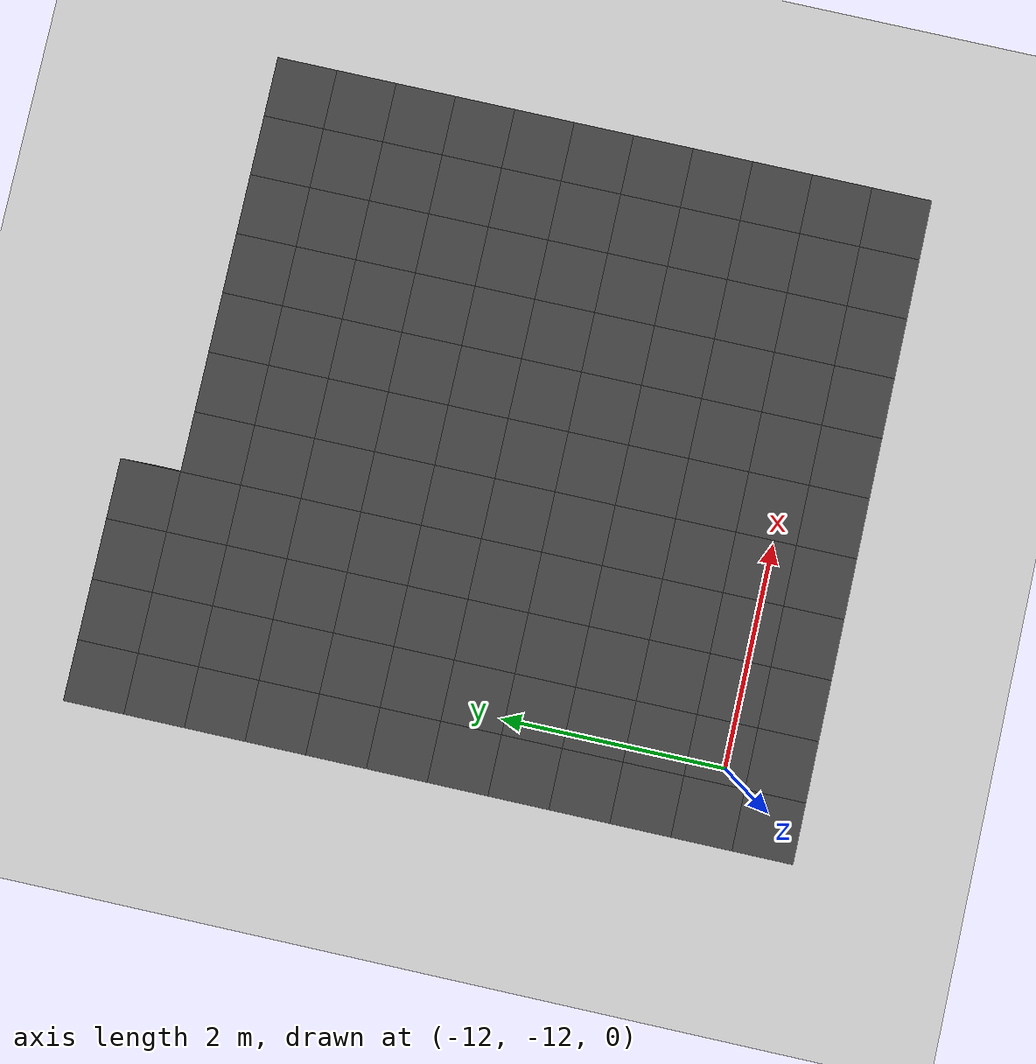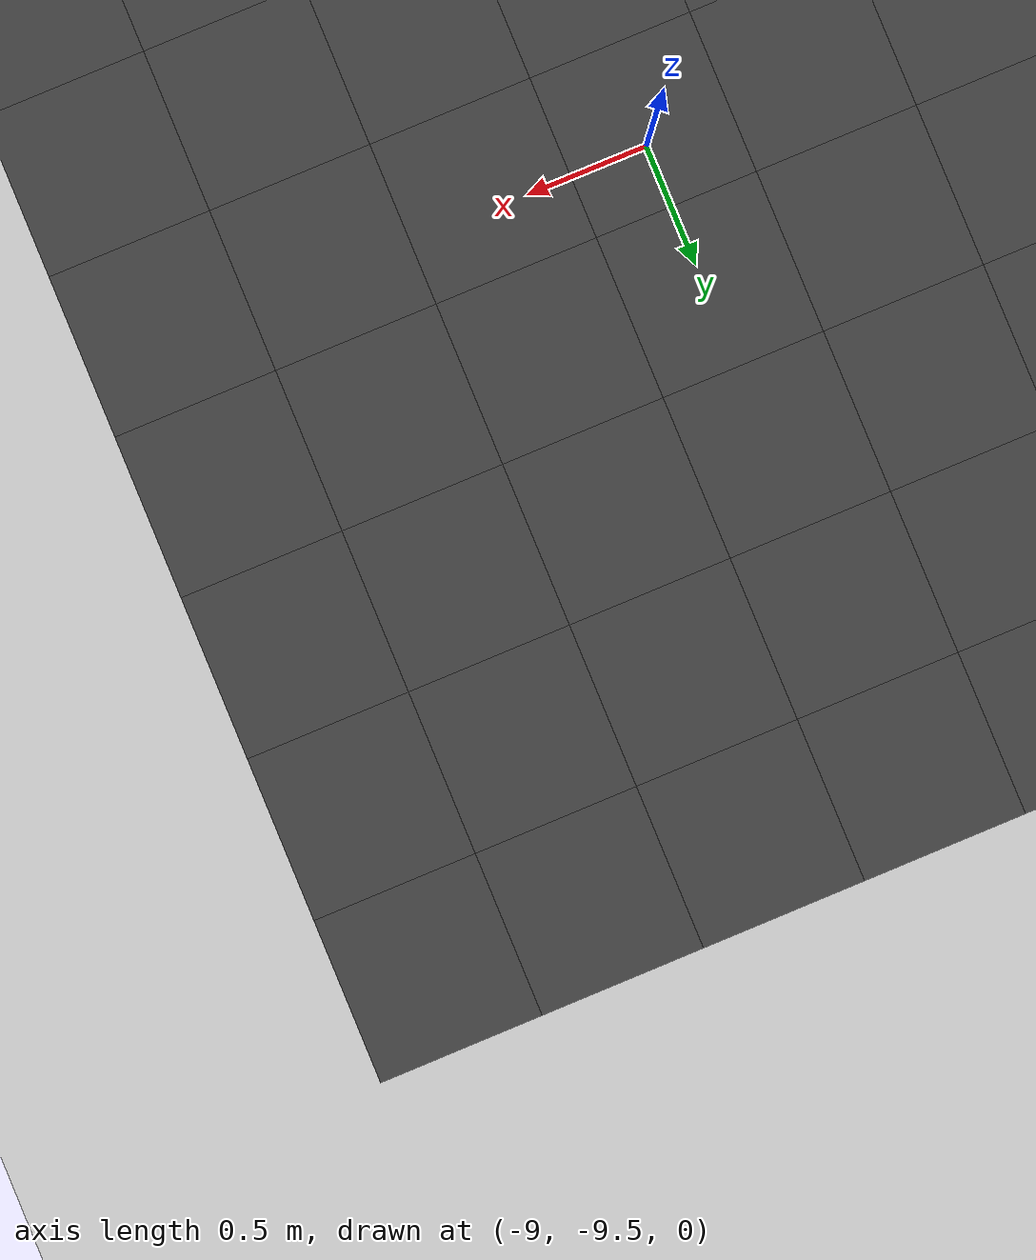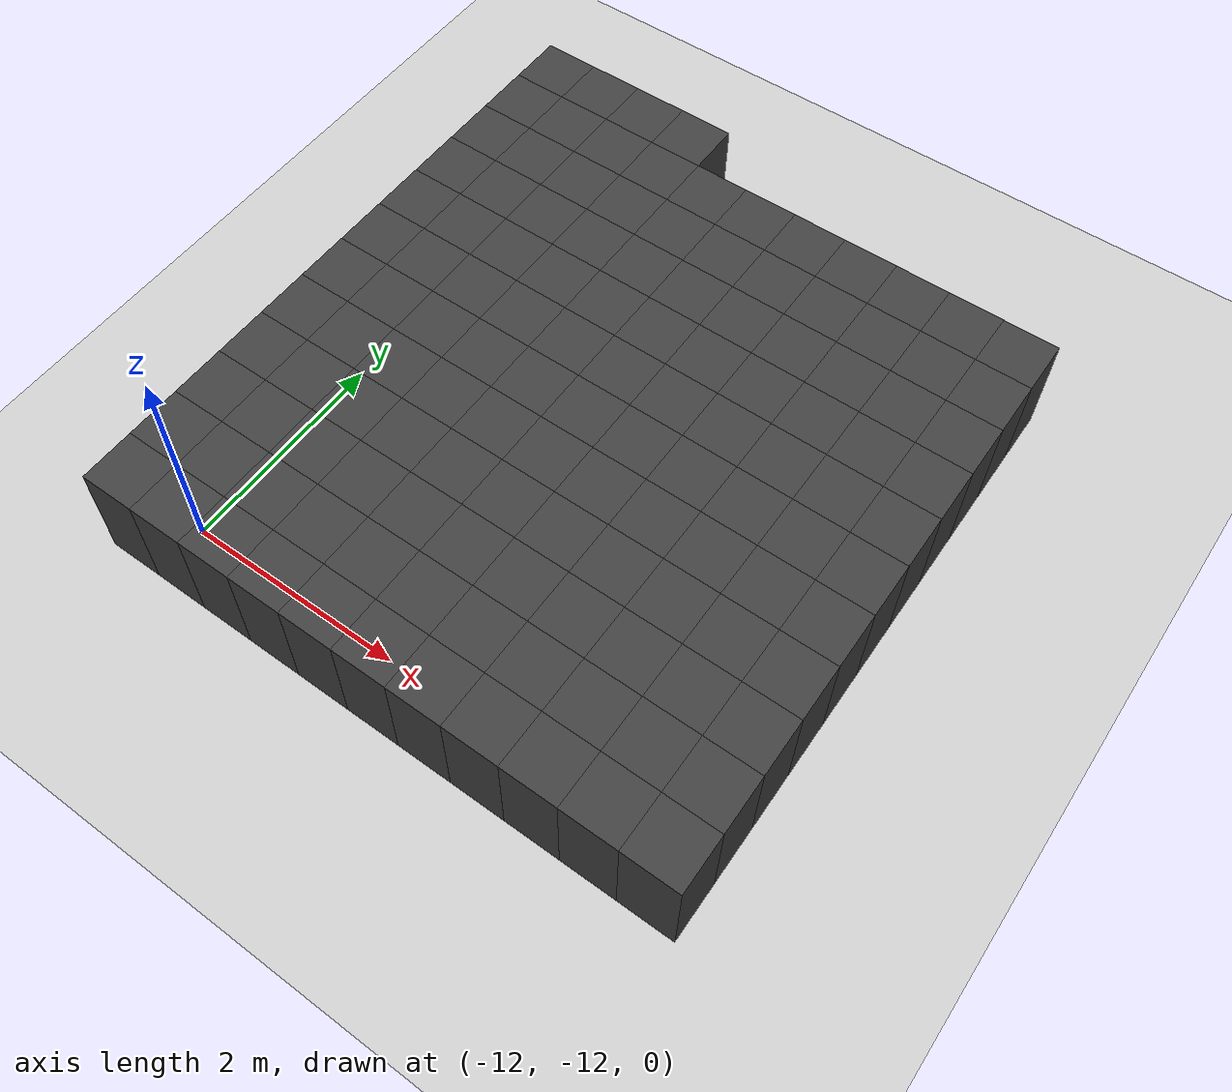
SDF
<sdf version="1.7">
 <world name="map_10764">
  <model name="ground_plane">
   <static>true</static>
   <link name="link">
    <collision name="collision">
     <geometry><plane><normal>0 0 1</normal><size>200 200</size></plane></geometry>
    </collision>
    <visual name="visual">
     <geometry><plane><normal>0 0 1</normal><size>200 200</size></plane></geometry>
     <material><ambient>0.8 0.8 0.8 1</ambient><diffuse>0.8 0.8 0.8 1</diffuse></material>
    </visual>
   </link>
  </model>
  <model name="maze_environment">
   <static>true</static>
   <link name="wall_1555">
    <pose>-12.250 -6.750 0.500 0 0 0</pose>
    <collision name="col"><geometry><box><size>0.5 0.5 1.0</size></box></geometry></collision>
    <visual name="vis">
     <geometry><box><size>0.5 0.5 1.0</size></box></geometry>
     <material><ambient>0.15 0.15 0.15 1</ambient><diffuse>0.25 0.25 0.25 1</diffuse></material>
    </visual>
   </link>
   <link name="wall_1556">
    <pose>-11.750 -6.750 0.500 0 0 0</pose>
    <collision name="col"><geometry><box><size>0.5 0.5 1.0</size></box></geometry></collision>
    <visual name="vis">
     <geometry><box><size>0.5 0.5 1.0</size></box></geometry>
     <material><ambient>0.15 0.15 0.15 1</ambient><diffuse>0.25 0.25 0.25 1</diffuse></material>
    </visual>
   </link>
   <link name="wall_1557">
    <pose>-11.250 -6.750 0.500 0 0 0</pose>
    <collision name="col"><geometry><box><size>0.5 0.5 1.0</size></box></geometry></collision>
    <visual name="vis">
     <geometry><box><size>0.5 0.5 1.0</size></box></geometry>
     <material><ambient>0.15 0.15 0.15 1</ambient><diffuse>0.25 0.25 0.25 1</diffuse></material>
    </visual>
   </link>
   <link name="wall_1558">
    <pose>-10.750 -6.750 0.500 0 0 0</pose>
    <collision name="col"><geometry><box><size>0.5 0.5 1.0</size></box></geometry></collision>
    <visual name="vis">
     <geometry><box><size>0.5 0.5 1.0</size></box></geometry>
     <material><ambient>0.15 0.15 0.15 1</ambient><diffuse>0.25 0.25 0.25 1</diffuse></material>
    </visual>
   </link>
   <link name="wall_1599">
    <pose>-12.250 -7.250 0.500 0 0 0</pose>
    <collision name="col"><geometry><box><size>0.5 0.5 1.0</size></box></geometry></collision>
    <visual name="vis">
     <geometry><box><size>0.5 0.5 1.0</size></box></geometry>
     <material><ambient>0.15 0.15 0.15 1</ambient><diffuse>0.25 0.25 0.25 1</diffuse></material>
    </visual>
   </link>
   <link name="wall_1600">
    <pose>-11.750 -7.250 0.500 0 0 0</pose>
    <collision name="col"><geometry><box><size>0.5 0.5 1.0</size></box></geometry></collision>
    <visual name="vis">
     <geometry><box><size>0.5 0.5 1.0</size></box></geometry>
     <material><ambient>0.15 0.15 0.15 1</ambient><diffuse>0.25 0.25 0.25 1</diffuse></material>
    </visual>
   </link>
   <link name="wall_1601">
    <pose>-11.250 -7.250 0.500 0 0 0</pose>
    <collision name="col"><geometry><box><size>0.5 0.5 1.0</size></box></geometry></collision>
    <visual name="vis">
     <geometry><box><size>0.5 0.5 1.0</size></box></geometry>
     <material><ambient>0.15 0.15 0.15 1</ambient><diffuse>0.25 0.25 0.25 1</diffuse></material>
    </visual>
   </link>
   <link name="wall_1602">
    <pose>-10.750 -7.250 0.500 0 0 0</pose>
    <collision name="col"><geometry><box><size>0.5 0.5 1.0</size></box></geometry></collision>
    <visual name="vis">
     <geometry><box><size>0.5 0.5 1.0</size></box></geometry>
     <material><ambient>0.15 0.15 0.15 1</ambient><diffuse>0.25 0.25 0.25 1</diffuse></material>
    </visual>
   </link>
   <link name="wall_1603">
    <pose>-10.250 -7.250 0.500 0 0 0</pose>
    <collision name="col"><geometry><box><size>0.5 0.5 1.0</size></box></geometry></collision>
    <visual name="vis">
     <geometry><box><size>0.5 0.5 1.0</size></box></geometry>
     <material><ambient>0.15 0.15 0.15 1</ambient><diffuse>0.25 0.25 0.25 1</diffuse></material>
    </visual>
   </link>
   <link name="wall_1604">
    <pose>-9.750 -7.250 0.500 0 0 0</pose>
    <collision name="col"><geometry><box><size>0.5 0.5 1.0</size></box></geometry></collision>
    <visual name="vis">
     <geometry><box><size>0.5 0.5 1.0</size></box></geometry>
     <material><ambient>0.15 0.15 0.15 1</ambient><diffuse>0.25 0.25 0.25 1</diffuse></material>
    </visual>
   </link>
   <link name="wall_1605">
    <pose>-9.250 -7.250 0.500 0 0 0</pose>
    <collision name="col"><geometry><box><size>0.5 0.5 1.0</size></box></geometry></collision>
    <visual name="vis">
     <geometry><box><size>0.5 0.5 1.0</size></box></geometry>
     <material><ambient>0.15 0.15 0.15 1</ambient><diffuse>0.25 0.25 0.25 1</diffuse></material>
    </visual>
   </link>
   <link name="wall_1606">
    <pose>-8.750 -7.250 0.500 0 0 0</pose>
    <collision name="col"><geometry><box><size>0.5 0.5 1.0</size></box></geometry></collision>
    <visual name="vis">
     <geometry><box><size>0.5 0.5 1.0</size></box></geometry>
     <material><ambient>0.15 0.15 0.15 1</ambient><diffuse>0.25 0.25 0.25 1</diffuse></material>
    </visual>
   </link>
   <link name="wall_1607">
    <pose>-8.250 -7.250 0.500 0 0 0</pose>
    <collision name="col"><geometry><box><size>0.5 0.5 1.0</size></box></geometry></collision>
    <visual name="vis">
     <geometry><box><size>0.5 0.5 1.0</size></box></geometry>
     <material><ambient>0.15 0.15 0.15 1</ambient><diffuse>0.25 0.25 0.25 1</diffuse></material>
    </visual>
   </link>
   <link name="wall_1608">
    <pose>-7.750 -7.250 0.500 0 0 0</pose>
    <collision name="col"><geometry><box><size>0.5 0.5 1.0</size></box></geometry></collision>
    <visual name="vis">
     <geometry><box><size>0.5 0.5 1.0</size></box></geometry>
     <material><ambient>0.15 0.15 0.15 1</ambient><diffuse>0.25 0.25 0.25 1</diffuse></material>
    </visual>
   </link>
   <link name="wall_1609">
    <pose>-7.250 -7.250 0.500 0 0 0</pose>
    <collision name="col"><geometry><box><size>0.5 0.5 1.0</size></box></geometry></collision>
    <visual name="vis">
     <geometry><box><size>0.5 0.5 1.0</size></box></geometry>
     <material><ambient>0.15 0.15 0.15 1</ambient><diffuse>0.25 0.25 0.25 1</diffuse></material>
    </visual>
   </link>
   <link name="wall_1648">
    <pose>-12.250 -7.750 0.500 0 0 0</pose>
    <collision name="col"><geometry><box><size>0.5 0.5 1.0</size></box></geometry></collision>
    <visual name="vis">
     <geometry><box><size>0.5 0.5 1.0</size></box></geometry>
     <material><ambient>0.15 0.15 0.15 1</ambient><diffuse>0.25 0.25 0.25 1</diffuse></material>
    </visual>
   </link>
   <link name="wall_1649">
    <pose>-11.750 -7.750 0.500 0 0 0</pose>
    <collision name="col"><geometry><box><size>0.5 0.5 1.0</size></box></geometry></collision>
    <visual name="vis">
     <geometry><box><size>0.5 0.5 1.0</size></box></geometry>
     <material><ambient>0.15 0.15 0.15 1</ambient><diffuse>0.25 0.25 0.25 1</diffuse></material>
    </visual>
   </link>
   <link name="wall_1650">
    <pose>-11.250 -7.750 0.500 0 0 0</pose>
    <collision name="col"><geometry><box><size>0.5 0.5 1.0</size></box></geometry></collision>
    <visual name="vis">
     <geometry><box><size>0.5 0.5 1.0</size></box></geometry>
     <material><ambient>0.15 0.15 0.15 1</ambient><diffuse>0.25 0.25 0.25 1</diffuse></material>
    </visual>
   </link>
   <link name="wall_1651">
    <pose>-10.750 -7.750 0.500 0 0 0</pose>
    <collision name="col"><geometry><box><size>0.5 0.5 1.0</size></box></geometry></collision>
    <visual name="vis">
     <geometry><box><size>0.5 0.5 1.0</size></box></geometry>
     <material><ambient>0.15 0.15 0.15 1</ambient><diffuse>0.25 0.25 0.25 1</diffuse></material>
    </visual>
   </link>
   <link name="wall_1652">
    <pose>-10.250 -7.750 0.500 0 0 0</pose>
    <collision name="col"><geometry><box><size>0.5 0.5 1.0</size></box></geometry></collision>
    <visual name="vis">
     <geometry><box><size>0.5 0.5 1.0</size></box></geometry>
     <material><ambient>0.15 0.15 0.15 1</ambient><diffuse>0.25 0.25 0.25 1</diffuse></material>
    </visual>
   </link>
   <link name="wall_1653">
    <pose>-9.750 -7.750 0.500 0 0 0</pose>
    <collision name="col"><geometry><box><size>0.5 0.5 1.0</size></box></geometry></collision>
    <visual name="vis">
     <geometry><box><size>0.5 0.5 1.0</size></box></geometry>
     <material><ambient>0.15 0.15 0.15 1</ambient><diffuse>0.25 0.25 0.25 1</diffuse></material>
    </visual>
   </link>
   <link name="wall_1654">
    <pose>-9.250 -7.750 0.500 0 0 0</pose>
    <collision name="col"><geometry><box><size>0.5 0.5 1.0</size></box></geometry></collision>
    <visual name="vis">
     <geometry><box><size>0.5 0.5 1.0</size></box></geometry>
     <material><ambient>0.15 0.15 0.15 1</ambient><diffuse>0.25 0.25 0.25 1</diffuse></material>
    </visual>
   </link>
   <link name="wall_1655">
    <pose>-8.750 -7.750 0.500 0 0 0</pose>
    <collision name="col"><geometry><box><size>0.5 0.5 1.0</size></box></geometry></collision>
    <visual name="vis">
     <geometry><box><size>0.5 0.5 1.0</size></box></geometry>
     <material><ambient>0.15 0.15 0.15 1</ambient><diffuse>0.25 0.25 0.25 1</diffuse></material>
    </visual>
   </link>
   <link name="wall_1656">
    <pose>-8.250 -7.750 0.500 0 0 0</pose>
    <collision name="col"><geometry><box><size>0.5 0.5 1.0</size></box></geometry></collision>
    <visual name="vis">
     <geometry><box><size>0.5 0.5 1.0</size></box></geometry>
     <material><ambient>0.15 0.15 0.15 1</ambient><diffuse>0.25 0.25 0.25 1</diffuse></material>
    </visual>
   </link>
   <link name="wall_1657">
    <pose>-7.750 -7.750 0.500 0 0 0</pose>
    <collision name="col"><geometry><box><size>0.5 0.5 1.0</size></box></geometry></collision>
    <visual name="vis">
     <geometry><box><size>0.5 0.5 1.0</size></box></geometry>
     <material><ambient>0.15 0.15 0.15 1</ambient><diffuse>0.25 0.25 0.25 1</diffuse></material>
    </visual>
   </link>
   <link name="wall_1658">
    <pose>-7.250 -7.750 0.500 0 0 0</pose>
    <collision name="col"><geometry><box><size>0.5 0.5 1.0</size></box></geometry></collision>
    <visual name="vis">
     <geometry><box><size>0.5 0.5 1.0</size></box></geometry>
     <material><ambient>0.15 0.15 0.15 1</ambient><diffuse>0.25 0.25 0.25 1</diffuse></material>
    </visual>
   </link>
   <link name="wall_1697">
    <pose>-12.250 -8.250 0.500 0 0 0</pose>
    <collision name="col"><geometry><box><size>0.5 0.5 1.0</size></box></geometry></collision>
    <visual name="vis">
     <geometry><box><size>0.5 0.5 1.0</size></box></geometry>
     <material><ambient>0.15 0.15 0.15 1</ambient><diffuse>0.25 0.25 0.25 1</diffuse></material>
    </visual>
   </link>
   <link name="wall_1698">
    <pose>-11.750 -8.250 0.500 0 0 0</pose>
    <collision name="col"><geometry><box><size>0.5 0.5 1.0</size></box></geometry></collision>
    <visual name="vis">
     <geometry><box><size>0.5 0.5 1.0</size></box></geometry>
     <material><ambient>0.15 0.15 0.15 1</ambient><diffuse>0.25 0.25 0.25 1</diffuse></material>
    </visual>
   </link>
   <link name="wall_1699">
    <pose>-11.250 -8.250 0.500 0 0 0</pose>
    <collision name="col"><geometry><box><size>0.5 0.5 1.0</size></box></geometry></collision>
    <visual name="vis">
     <geometry><box><size>0.5 0.5 1.0</size></box></geometry>
     <material><ambient>0.15 0.15 0.15 1</ambient><diffuse>0.25 0.25 0.25 1</diffuse></material>
    </visual>
   </link>
   <link name="wall_1700">
    <pose>-10.750 -8.250 0.500 0 0 0</pose>
    <collision name="col"><geometry><box><size>0.5 0.5 1.0</size></box></geometry></collision>
    <visual name="vis">
     <geometry><box><size>0.5 0.5 1.0</size></box></geometry>
     <material><ambient>0.15 0.15 0.15 1</ambient><diffuse>0.25 0.25 0.25 1</diffuse></material>
    </visual>
   </link>
   <link name="wall_1701">
    <pose>-10.250 -8.250 0.500 0 0 0</pose>
    <collision name="col"><geometry><box><size>0.5 0.5 1.0</size></box></geometry></collision>
    <visual name="vis">
     <geometry><box><size>0.5 0.5 1.0</size></box></geometry>
     <material><ambient>0.15 0.15 0.15 1</ambient><diffuse>0.25 0.25 0.25 1</diffuse></material>
    </visual>
   </link>
   <link name="wall_1702">
    <pose>-9.750 -8.250 0.500 0 0 0</pose>
    <collision name="col"><geometry><box><size>0.5 0.5 1.0</size></box></geometry></collision>
    <visual name="vis">
     <geometry><box><size>0.5 0.5 1.0</size></box></geometry>
     <material><ambient>0.15 0.15 0.15 1</ambient><diffuse>0.25 0.25 0.25 1</diffuse></material>
    </visual>
   </link>
   <link name="wall_1703">
    <pose>-9.250 -8.250 0.500 0 0 0</pose>
    <collision name="col"><geometry><box><size>0.5 0.5 1.0</size></box></geometry></collision>
    <visual name="vis">
     <geometry><box><size>0.5 0.5 1.0</size></box></geometry>
     <material><ambient>0.15 0.15 0.15 1</ambient><diffuse>0.25 0.25 0.25 1</diffuse></material>
    </visual>
   </link>
   <link name="wall_1704">
    <pose>-8.750 -8.250 0.500 0 0 0</pose>
    <collision name="col"><geometry><box><size>0.5 0.5 1.0</size></box></geometry></collision>
    <visual name="vis">
     <geometry><box><size>0.5 0.5 1.0</size></box></geometry>
     <material><ambient>0.15 0.15 0.15 1</ambient><diffuse>0.25 0.25 0.25 1</diffuse></material>
    </visual>
   </link>
   <link name="wall_1705">
    <pose>-8.250 -8.250 0.500 0 0 0</pose>
    <collision name="col"><geometry><box><size>0.5 0.5 1.0</size></box></geometry></collision>
    <visual name="vis">
     <geometry><box><size>0.5 0.5 1.0</size></box></geometry>
     <material><ambient>0.15 0.15 0.15 1</ambient><diffuse>0.25 0.25 0.25 1</diffuse></material>
    </visual>
   </link>
   <link name="wall_1706">
    <pose>-7.750 -8.250 0.500 0 0 0</pose>
    <collision name="col"><geometry><box><size>0.5 0.5 1.0</size></box></geometry></collision>
    <visual name="vis">
     <geometry><box><size>0.5 0.5 1.0</size></box></geometry>
     <material><ambient>0.15 0.15 0.15 1</ambient><diffuse>0.25 0.25 0.25 1</diffuse></material>
    </visual>
   </link>
   <link name="wall_1707">
    <pose>-7.250 -8.250 0.500 0 0 0</pose>
    <collision name="col"><geometry><box><size>0.5 0.5 1.0</size></box></geometry></collision>
    <visual name="vis">
     <geometry><box><size>0.5 0.5 1.0</size></box></geometry>
     <material><ambient>0.15 0.15 0.15 1</ambient><diffuse>0.25 0.25 0.25 1</diffuse></material>
    </visual>
   </link>
   <link name="wall_1746">
    <pose>-12.250 -8.750 0.500 0 0 0</pose>
    <collision name="col"><geometry><box><size>0.5 0.5 1.0</size></box></geometry></collision>
    <visual name="vis">
     <geometry><box><size>0.5 0.5 1.0</size></box></geometry>
     <material><ambient>0.15 0.15 0.15 1</ambient><diffuse>0.25 0.25 0.25 1</diffuse></material>
    </visual>
   </link>
   <link name="wall_1747">
    <pose>-11.750 -8.750 0.500 0 0 0</pose>
    <collision name="col"><geometry><box><size>0.5 0.5 1.0</size></box></geometry></collision>
    <visual name="vis">
     <geometry><box><size>0.5 0.5 1.0</size></box></geometry>
     <material><ambient>0.15 0.15 0.15 1</ambient><diffuse>0.25 0.25 0.25 1</diffuse></material>
    </visual>
   </link>
   <link name="wall_1748">
    <pose>-11.250 -8.750 0.500 0 0 0</pose>
    <collision name="col"><geometry><box><size>0.5 0.5 1.0</size></box></geometry></collision>
    <visual name="vis">
     <geometry><box><size>0.5 0.5 1.0</size></box></geometry>
     <material><ambient>0.15 0.15 0.15 1</ambient><diffuse>0.25 0.25 0.25 1</diffuse></material>
    </visual>
   </link>
   <link name="wall_1749">
    <pose>-10.750 -8.750 0.500 0 0 0</pose>
    <collision name="col"><geometry><box><size>0.5 0.5 1.0</size></box></geometry></collision>
    <visual name="vis">
     <geometry><box><size>0.5 0.5 1.0</size></box></geometry>
     <material><ambient>0.15 0.15 0.15 1</ambient><diffuse>0.25 0.25 0.25 1</diffuse></material>
    </visual>
   </link>
   <link name="wall_1750">
    <pose>-10.250 -8.750 0.500 0 0 0</pose>
    <collision name="col"><geometry><box><size>0.5 0.5 1.0</size></box></geometry></collision>
    <visual name="vis">
     <geometry><box><size>0.5 0.5 1.0</size></box></geometry>
     <material><ambient>0.15 0.15 0.15 1</ambient><diffuse>0.25 0.25 0.25 1</diffuse></material>
    </visual>
   </link>
   <link name="wall_1751">
    <pose>-9.750 -8.750 0.500 0 0 0</pose>
    <collision name="col"><geometry><box><size>0.5 0.5 1.0</size></box></geometry></collision>
    <visual name="vis">
     <geometry><box><size>0.5 0.5 1.0</size></box></geometry>
     <material><ambient>0.15 0.15 0.15 1</ambient><diffuse>0.25 0.25 0.25 1</diffuse></material>
    </visual>
   </link>
   <link name="wall_1752">
    <pose>-9.250 -8.750 0.500 0 0 0</pose>
    <collision name="col"><geometry><box><size>0.5 0.5 1.0</size></box></geometry></collision>
    <visual name="vis">
     <geometry><box><size>0.5 0.5 1.0</size></box></geometry>
     <material><ambient>0.15 0.15 0.15 1</ambient><diffuse>0.25 0.25 0.25 1</diffuse></material>
    </visual>
   </link>
   <link name="wall_1753">
    <pose>-8.750 -8.750 0.500 0 0 0</pose>
    <collision name="col"><geometry><box><size>0.5 0.5 1.0</size></box></geometry></collision>
    <visual name="vis">
     <geometry><box><size>0.5 0.5 1.0</size></box></geometry>
     <material><ambient>0.15 0.15 0.15 1</ambient><diffuse>0.25 0.25 0.25 1</diffuse></material>
    </visual>
   </link>
   <link name="wall_1754">
    <pose>-8.250 -8.750 0.500 0 0 0</pose>
    <collision name="col"><geometry><box><size>0.5 0.5 1.0</size></box></geometry></collision>
    <visual name="vis">
     <geometry><box><size>0.5 0.5 1.0</size></box></geometry>
     <material><ambient>0.15 0.15 0.15 1</ambient><diffuse>0.25 0.25 0.25 1</diffuse></material>
    </visual>
   </link>
   <link name="wall_1755">
    <pose>-7.750 -8.750 0.500 0 0 0</pose>
    <collision name="col"><geometry><box><size>0.5 0.5 1.0</size></box></geometry></collision>
    <visual name="vis">
     <geometry><box><size>0.5 0.5 1.0</size></box></geometry>
     <material><ambient>0.15 0.15 0.15 1</ambient><diffuse>0.25 0.25 0.25 1</diffuse></material>
    </visual>
   </link>
   <link name="wall_1756">
    <pose>-7.250 -8.750 0.500 0 0 0</pose>
    <collision name="col"><geometry><box><size>0.5 0.5 1.0</size></box></geometry></collision>
    <visual name="vis">
     <geometry><box><size>0.5 0.5 1.0</size></box></geometry>
     <material><ambient>0.15 0.15 0.15 1</ambient><diffuse>0.25 0.25 0.25 1</diffuse></material>
    </visual>
   </link>
   <link name="wall_1795">
    <pose>-12.250 -9.250 0.500 0 0 0</pose>
    <collision name="col"><geometry><box><size>0.5 0.5 1.0</size></box></geometry></collision>
    <visual name="vis">
     <geometry><box><size>0.5 0.5 1.0</size></box></geometry>
     <material><ambient>0.15 0.15 0.15 1</ambient><diffuse>0.25 0.25 0.25 1</diffuse></material>
    </visual>
   </link>
   <link name="wall_1796">
    <pose>-11.750 -9.250 0.500 0 0 0</pose>
    <collision name="col"><geometry><box><size>0.5 0.5 1.0</size></box></geometry></collision>
    <visual name="vis">
     <geometry><box><size>0.5 0.5 1.0</size></box></geometry>
     <material><ambient>0.15 0.15 0.15 1</ambient><diffuse>0.25 0.25 0.25 1</diffuse></material>
    </visual>
   </link>
   <link name="wall_1797">
    <pose>-11.250 -9.250 0.500 0 0 0</pose>
    <collision name="col"><geometry><box><size>0.5 0.5 1.0</size></box></geometry></collision>
    <visual name="vis">
     <geometry><box><size>0.5 0.5 1.0</size></box></geometry>
     <material><ambient>0.15 0.15 0.15 1</ambient><diffuse>0.25 0.25 0.25 1</diffuse></material>
    </visual>
   </link>
   <link name="wall_1798">
    <pose>-10.750 -9.250 0.500 0 0 0</pose>
    <collision name="col"><geometry><box><size>0.5 0.5 1.0</size></box></geometry></collision>
    <visual name="vis">
     <geometry><box><size>0.5 0.5 1.0</size></box></geometry>
     <material><ambient>0.15 0.15 0.15 1</ambient><diffuse>0.25 0.25 0.25 1</diffuse></material>
    </visual>
   </link>
   <link name="wall_1799">
    <pose>-10.250 -9.250 0.500 0 0 0</pose>
    <collision name="col"><geometry><box><size>0.5 0.5 1.0</size></box></geometry></collision>
    <visual name="vis">
     <geometry><box><size>0.5 0.5 1.0</size></box></geometry>
     <material><ambient>0.15 0.15 0.15 1</ambient><diffuse>0.25 0.25 0.25 1</diffuse></material>
    </visual>
   </link>
   <link name="wall_1800">
    <pose>-9.750 -9.250 0.500 0 0 0</pose>
    <collision name="col"><geometry><box><size>0.5 0.5 1.0</size></box></geometry></collision>
    <visual name="vis">
     <geometry><box><size>0.5 0.5 1.0</size></box></geometry>
     <material><ambient>0.15 0.15 0.15 1</ambient><diffuse>0.25 0.25 0.25 1</diffuse></material>
    </visual>
   </link>
   <link name="wall_1801">
    <pose>-9.250 -9.250 0.500 0 0 0</pose>
    <collision name="col"><geometry><box><size>0.5 0.5 1.0</size></box></geometry></collision>
    <visual name="vis">
     <geometry><box><size>0.5 0.5 1.0</size></box></geometry>
     <material><ambient>0.15 0.15 0.15 1</ambient><diffuse>0.25 0.25 0.25 1</diffuse></material>
    </visual>
   </link>
   <link name="wall_1802">
    <pose>-8.750 -9.250 0.500 0 0 0</pose>
    <collision name="col"><geometry><box><size>0.5 0.5 1.0</size></box></geometry></collision>
    <visual name="vis">
     <geometry><box><size>0.5 0.5 1.0</size></box></geometry>
     <material><ambient>0.15 0.15 0.15 1</ambient><diffuse>0.25 0.25 0.25 1</diffuse></material>
    </visual>
   </link>
   <link name="wall_1803">
    <pose>-8.250 -9.250 0.500 0 0 0</pose>
    <collision name="col"><geometry><box><size>0.5 0.5 1.0</size></box></geometry></collision>
    <visual name="vis">
     <geometry><box><size>0.5 0.5 1.0</size></box></geometry>
     <material><ambient>0.15 0.15 0.15 1</ambient><diffuse>0.25 0.25 0.25 1</diffuse></material>
    </visual>
   </link>
   <link name="wall_1804">
    <pose>-7.750 -9.250 0.500 0 0 0</pose>
    <collision name="col"><geometry><box><size>0.5 0.5 1.0</size></box></geometry></collision>
    <visual name="vis">
     <geometry><box><size>0.5 0.5 1.0</size></box></geometry>
     <material><ambient>0.15 0.15 0.15 1</ambient><diffuse>0.25 0.25 0.25 1</diffuse></material>
    </visual>
   </link>
   <link name="wall_1805">
    <pose>-7.250 -9.250 0.500 0 0 0</pose>
    <collision name="col"><geometry><box><size>0.5 0.5 1.0</size></box></geometry></collision>
    <visual name="vis">
     <geometry><box><size>0.5 0.5 1.0</size></box></geometry>
     <material><ambient>0.15 0.15 0.15 1</ambient><diffuse>0.25 0.25 0.25 1</diffuse></material>
    </visual>
   </link>
   <link name="wall_1844">
    <pose>-12.250 -9.750 0.500 0 0 0</pose>
    <collision name="col"><geometry><box><size>0.5 0.5 1.0</size></box></geometry></collision>
    <visual name="vis">
     <geometry><box><size>0.5 0.5 1.0</size></box></geometry>
     <material><ambient>0.15 0.15 0.15 1</ambient><diffuse>0.25 0.25 0.25 1</diffuse></material>
    </visual>
   </link>
   <link name="wall_1845">
    <pose>-11.750 -9.750 0.500 0 0 0</pose>
    <collision name="col"><geometry><box><size>0.5 0.5 1.0</size></box></geometry></collision>
    <visual name="vis">
     <geometry><box><size>0.5 0.5 1.0</size></box></geometry>
     <material><ambient>0.15 0.15 0.15 1</ambient><diffuse>0.25 0.25 0.25 1</diffuse></material>
    </visual>
   </link>
   <link name="wall_1846">
    <pose>-11.250 -9.750 0.500 0 0 0</pose>
    <collision name="col"><geometry><box><size>0.5 0.5 1.0</size></box></geometry></collision>
    <visual name="vis">
     <geometry><box><size>0.5 0.5 1.0</size></box></geometry>
     <material><ambient>0.15 0.15 0.15 1</ambient><diffuse>0.25 0.25 0.25 1</diffuse></material>
    </visual>
   </link>
   <link name="wall_1847">
    <pose>-10.750 -9.750 0.500 0 0 0</pose>
    <collision name="col"><geometry><box><size>0.5 0.5 1.0</size></box></geometry></collision>
    <visual name="vis">
     <geometry><box><size>0.5 0.5 1.0</size></box></geometry>
     <material><ambient>0.15 0.15 0.15 1</ambient><diffuse>0.25 0.25 0.25 1</diffuse></material>
    </visual>
   </link>
   <link name="wall_1848">
    <pose>-10.250 -9.750 0.500 0 0 0</pose>
    <collision name="col"><geometry><box><size>0.5 0.5 1.0</size></box></geometry></collision>
    <visual name="vis">
     <geometry><box><size>0.5 0.5 1.0</size></box></geometry>
     <material><ambient>0.15 0.15 0.15 1</ambient><diffuse>0.25 0.25 0.25 1</diffuse></material>
    </visual>
   </link>
   <link name="wall_1849">
    <pose>-9.750 -9.750 0.500 0 0 0</pose>
    <collision name="col"><geometry><box><size>0.5 0.5 1.0</size></box></geometry></collision>
    <visual name="vis">
     <geometry><box><size>0.5 0.5 1.0</size></box></geometry>
     <material><ambient>0.15 0.15 0.15 1</ambient><diffuse>0.25 0.25 0.25 1</diffuse></material>
    </visual>
   </link>
   <link name="wall_1850">
    <pose>-9.250 -9.750 0.500 0 0 0</pose>
    <collision name="col"><geometry><box><size>0.5 0.5 1.0</size></box></geometry></collision>
    <visual name="vis">
     <geometry><box><size>0.5 0.5 1.0</size></box></geometry>
     <material><ambient>0.15 0.15 0.15 1</ambient><diffuse>0.25 0.25 0.25 1</diffuse></material>
    </visual>
   </link>
   <link name="wall_1851">
    <pose>-8.750 -9.750 0.500 0 0 0</pose>
    <collision name="col"><geometry><box><size>0.5 0.5 1.0</size></box></geometry></collision>
    <visual name="vis">
     <geometry><box><size>0.5 0.5 1.0</size></box></geometry>
     <material><ambient>0.15 0.15 0.15 1</ambient><diffuse>0.25 0.25 0.25 1</diffuse></material>
    </visual>
   </link>
   <link name="wall_1852">
    <pose>-8.250 -9.750 0.500 0 0 0</pose>
    <collision name="col"><geometry><box><size>0.5 0.5 1.0</size></box></geometry></collision>
    <visual name="vis">
     <geometry><box><size>0.5 0.5 1.0</size></box></geometry>
     <material><ambient>0.15 0.15 0.15 1</ambient><diffuse>0.25 0.25 0.25 1</diffuse></material>
    </visual>
   </link>
   <link name="wall_1853">
    <pose>-7.750 -9.750 0.500 0 0 0</pose>
    <collision name="col"><geometry><box><size>0.5 0.5 1.0</size></box></geometry></collision>
    <visual name="vis">
     <geometry><box><size>0.5 0.5 1.0</size></box></geometry>
     <material><ambient>0.15 0.15 0.15 1</ambient><diffuse>0.25 0.25 0.25 1</diffuse></material>
    </visual>
   </link>
   <link name="wall_1854">
    <pose>-7.250 -9.750 0.500 0 0 0</pose>
    <collision name="col"><geometry><box><size>0.5 0.5 1.0</size></box></geometry></collision>
    <visual name="vis">
     <geometry><box><size>0.5 0.5 1.0</size></box></geometry>
     <material><ambient>0.15 0.15 0.15 1</ambient><diffuse>0.25 0.25 0.25 1</diffuse></material>
    </visual>
   </link>
   <link name="wall_1893">
    <pose>-12.250 -10.250 0.500 0 0 0</pose>
    <collision name="col"><geometry><box><size>0.5 0.5 1.0</size></box></geometry></collision>
    <visual name="vis">
     <geometry><box><size>0.5 0.5 1.0</size></box></geometry>
     <material><ambient>0.15 0.15 0.15 1</ambient><diffuse>0.25 0.25 0.25 1</diffuse></material>
    </visual>
   </link>
   <link name="wall_1894">
    <pose>-11.750 -10.250 0.500 0 0 0</pose>
    <collision name="col"><geometry><box><size>0.5 0.5 1.0</size></box></geometry></collision>
    <visual name="vis">
     <geometry><box><size>0.5 0.5 1.0</size></box></geometry>
     <material><ambient>0.15 0.15 0.15 1</ambient><diffuse>0.25 0.25 0.25 1</diffuse></material>
    </visual>
   </link>
   <link name="wall_1895">
    <pose>-11.250 -10.250 0.500 0 0 0</pose>
    <collision name="col"><geometry><box><size>0.5 0.5 1.0</size></box></geometry></collision>
    <visual name="vis">
     <geometry><box><size>0.5 0.5 1.0</size></box></geometry>
     <material><ambient>0.15 0.15 0.15 1</ambient><diffuse>0.25 0.25 0.25 1</diffuse></material>
    </visual>
   </link>
   <link name="wall_1896">
    <pose>-10.750 -10.250 0.500 0 0 0</pose>
    <collision name="col"><geometry><box><size>0.5 0.5 1.0</size></box></geometry></collision>
    <visual name="vis">
     <geometry><box><size>0.5 0.5 1.0</size></box></geometry>
     <material><ambient>0.15 0.15 0.15 1</ambient><diffuse>0.25 0.25 0.25 1</diffuse></material>
    </visual>
   </link>
   <link name="wall_1897">
    <pose>-10.250 -10.250 0.500 0 0 0</pose>
    <collision name="col"><geometry><box><size>0.5 0.5 1.0</size></box></geometry></collision>
    <visual name="vis">
     <geometry><box><size>0.5 0.5 1.0</size></box></geometry>
     <material><ambient>0.15 0.15 0.15 1</ambient><diffuse>0.25 0.25 0.25 1</diffuse></material>
    </visual>
   </link>
   <link name="wall_1898">
    <pose>-9.750 -10.250 0.500 0 0 0</pose>
    <collision name="col"><geometry><box><size>0.5 0.5 1.0</size></box></geometry></collision>
    <visual name="vis">
     <geometry><box><size>0.5 0.5 1.0</size></box></geometry>
     <material><ambient>0.15 0.15 0.15 1</ambient><diffuse>0.25 0.25 0.25 1</diffuse></material>
    </visual>
   </link>
   <link name="wall_1899">
    <pose>-9.250 -10.250 0.500 0 0 0</pose>
    <collision name="col"><geometry><box><size>0.5 0.5 1.0</size></box></geometry></collision>
    <visual name="vis">
     <geometry><box><size>0.5 0.5 1.0</size></box></geometry>
     <material><ambient>0.15 0.15 0.15 1</ambient><diffuse>0.25 0.25 0.25 1</diffuse></material>
    </visual>
   </link>
   <link name="wall_1900">
    <pose>-8.750 -10.250 0.500 0 0 0</pose>
    <collision name="col"><geometry><box><size>0.5 0.5 1.0</size></box></geometry></collision>
    <visual name="vis">
     <geometry><box><size>0.5 0.5 1.0</size></box></geometry>
     <material><ambient>0.15 0.15 0.15 1</ambient><diffuse>0.25 0.25 0.25 1</diffuse></material>
    </visual>
   </link>
   <link name="wall_1901">
    <pose>-8.250 -10.250 0.500 0 0 0</pose>
    <collision name="col"><geometry><box><size>0.5 0.5 1.0</size></box></geometry></collision>
    <visual name="vis">
     <geometry><box><size>0.5 0.5 1.0</size></box></geometry>
     <material><ambient>0.15 0.15 0.15 1</ambient><diffuse>0.25 0.25 0.25 1</diffuse></material>
    </visual>
   </link>
   <link name="wall_1902">
    <pose>-7.750 -10.250 0.500 0 0 0</pose>
    <collision name="col"><geometry><box><size>0.5 0.5 1.0</size></box></geometry></collision>
    <visual name="vis">
     <geometry><box><size>0.5 0.5 1.0</size></box></geometry>
     <material><ambient>0.15 0.15 0.15 1</ambient><diffuse>0.25 0.25 0.25 1</diffuse></material>
    </visual>
   </link>
   <link name="wall_1903">
    <pose>-7.250 -10.250 0.500 0 0 0</pose>
    <collision name="col"><geometry><box><size>0.5 0.5 1.0</size></box></geometry></collision>
    <visual name="vis">
     <geometry><box><size>0.5 0.5 1.0</size></box></geometry>
     <material><ambient>0.15 0.15 0.15 1</ambient><diffuse>0.25 0.25 0.25 1</diffuse></material>
    </visual>
   </link>
   <link name="wall_1942">
    <pose>-12.250 -10.750 0.500 0 0 0</pose>
    <collision name="col"><geometry><box><size>0.5 0.5 1.0</size></box></geometry></collision>
    <visual name="vis">
     <geometry><box><size>0.5 0.5 1.0</size></box></geometry>
     <material><ambient>0.15 0.15 0.15 1</ambient><diffuse>0.25 0.25 0.25 1</diffuse></material>
    </visual>
   </link>
   <link name="wall_1943">
    <pose>-11.750 -10.750 0.500 0 0 0</pose>
    <collision name="col"><geometry><box><size>0.5 0.5 1.0</size></box></geometry></collision>
    <visual name="vis">
     <geometry><box><size>0.5 0.5 1.0</size></box></geometry>
     <material><ambient>0.15 0.15 0.15 1</ambient><diffuse>0.25 0.25 0.25 1</diffuse></material>
    </visual>
   </link>
   <link name="wall_1944">
    <pose>-11.250 -10.750 0.500 0 0 0</pose>
    <collision name="col"><geometry><box><size>0.5 0.5 1.0</size></box></geometry></collision>
    <visual name="vis">
     <geometry><box><size>0.5 0.5 1.0</size></box></geometry>
     <material><ambient>0.15 0.15 0.15 1</ambient><diffuse>0.25 0.25 0.25 1</diffuse></material>
    </visual>
   </link>
   <link name="wall_1945">
    <pose>-10.750 -10.750 0.500 0 0 0</pose>
    <collision name="col"><geometry><box><size>0.5 0.5 1.0</size></box></geometry></collision>
    <visual name="vis">
     <geometry><box><size>0.5 0.5 1.0</size></box></geometry>
     <material><ambient>0.15 0.15 0.15 1</ambient><diffuse>0.25 0.25 0.25 1</diffuse></material>
    </visual>
   </link>
   <link name="wall_1946">
    <pose>-10.250 -10.750 0.500 0 0 0</pose>
    <collision name="col"><geometry><box><size>0.5 0.5 1.0</size></box></geometry></collision>
    <visual name="vis">
     <geometry><box><size>0.5 0.5 1.0</size></box></geometry>
     <material><ambient>0.15 0.15 0.15 1</ambient><diffuse>0.25 0.25 0.25 1</diffuse></material>
    </visual>
   </link>
   <link name="wall_1947">
    <pose>-9.750 -10.750 0.500 0 0 0</pose>
    <collision name="col"><geometry><box><size>0.5 0.5 1.0</size></box></geometry></collision>
    <visual name="vis">
     <geometry><box><size>0.5 0.5 1.0</size></box></geometry>
     <material><ambient>0.15 0.15 0.15 1</ambient><diffuse>0.25 0.25 0.25 1</diffuse></material>
    </visual>
   </link>
   <link name="wall_1948">
    <pose>-9.250 -10.750 0.500 0 0 0</pose>
    <collision name="col"><geometry><box><size>0.5 0.5 1.0</size></box></geometry></collision>
    <visual name="vis">
     <geometry><box><size>0.5 0.5 1.0</size></box></geometry>
     <material><ambient>0.15 0.15 0.15 1</ambient><diffuse>0.25 0.25 0.25 1</diffuse></material>
    </visual>
   </link>
   <link name="wall_1949">
    <pose>-8.750 -10.750 0.500 0 0 0</pose>
    <collision name="col"><geometry><box><size>0.5 0.5 1.0</size></box></geometry></collision>
    <visual name="vis">
     <geometry><box><size>0.5 0.5 1.0</size></box></geometry>
     <material><ambient>0.15 0.15 0.15 1</ambient><diffuse>0.25 0.25 0.25 1</diffuse></material>
    </visual>
   </link>
   <link name="wall_1950">
    <pose>-8.250 -10.750 0.500 0 0 0</pose>
    <collision name="col"><geometry><box><size>0.5 0.5 1.0</size></box></geometry></collision>
    <visual name="vis">
     <geometry><box><size>0.5 0.5 1.0</size></box></geometry>
     <material><ambient>0.15 0.15 0.15 1</ambient><diffuse>0.25 0.25 0.25 1</diffuse></material>
    </visual>
   </link>
   <link name="wall_1951">
    <pose>-7.750 -10.750 0.500 0 0 0</pose>
    <collision name="col"><geometry><box><size>0.5 0.5 1.0</size></box></geometry></collision>
    <visual name="vis">
     <geometry><box><size>0.5 0.5 1.0</size></box></geometry>
     <material><ambient>0.15 0.15 0.15 1</ambient><diffuse>0.25 0.25 0.25 1</diffuse></material>
    </visual>
   </link>
   <link name="wall_1952">
    <pose>-7.250 -10.750 0.500 0 0 0</pose>
    <collision name="col"><geometry><box><size>0.5 0.5 1.0</size></box></geometry></collision>
    <visual name="vis">
     <geometry><box><size>0.5 0.5 1.0</size></box></geometry>
     <material><ambient>0.15 0.15 0.15 1</ambient><diffuse>0.25 0.25 0.25 1</diffuse></material>
    </visual>
   </link>
   <link name="wall_1988">
    <pose>-12.250 -11.250 0.500 0 0 0</pose>
    <collision name="col"><geometry><box><size>0.5 0.5 1.0</size></box></geometry></collision>
    <visual name="vis">
     <geometry><box><size>0.5 0.5 1.0</size></box></geometry>
     <material><ambient>0.15 0.15 0.15 1</ambient><diffuse>0.25 0.25 0.25 1</diffuse></material>
    </visual>
   </link>
   <link name="wall_1989">
    <pose>-11.750 -11.250 0.500 0 0 0</pose>
    <collision name="col"><geometry><box><size>0.5 0.5 1.0</size></box></geometry></collision>
    <visual name="vis">
     <geometry><box><size>0.5 0.5 1.0</size></box></geometry>
     <material><ambient>0.15 0.15 0.15 1</ambient><diffuse>0.25 0.25 0.25 1</diffuse></material>
    </visual>
   </link>
   <link name="wall_1990">
    <pose>-11.250 -11.250 0.500 0 0 0</pose>
    <collision name="col"><geometry><box><size>0.5 0.5 1.0</size></box></geometry></collision>
    <visual name="vis">
     <geometry><box><size>0.5 0.5 1.0</size></box></geometry>
     <material><ambient>0.15 0.15 0.15 1</ambient><diffuse>0.25 0.25 0.25 1</diffuse></material>
    </visual>
   </link>
   <link name="wall_1991">
    <pose>-10.750 -11.250 0.500 0 0 0</pose>
    <collision name="col"><geometry><box><size>0.5 0.5 1.0</size></box></geometry></collision>
    <visual name="vis">
     <geometry><box><size>0.5 0.5 1.0</size></box></geometry>
     <material><ambient>0.15 0.15 0.15 1</ambient><diffuse>0.25 0.25 0.25 1</diffuse></material>
    </visual>
   </link>
   <link name="wall_1992">
    <pose>-10.250 -11.250 0.500 0 0 0</pose>
    <collision name="col"><geometry><box><size>0.5 0.5 1.0</size></box></geometry></collision>
    <visual name="vis">
     <geometry><box><size>0.5 0.5 1.0</size></box></geometry>
     <material><ambient>0.15 0.15 0.15 1</ambient><diffuse>0.25 0.25 0.25 1</diffuse></material>
    </visual>
   </link>
   <link name="wall_1993">
    <pose>-9.750 -11.250 0.500 0 0 0</pose>
    <collision name="col"><geometry><box><size>0.5 0.5 1.0</size></box></geometry></collision>
    <visual name="vis">
     <geometry><box><size>0.5 0.5 1.0</size></box></geometry>
     <material><ambient>0.15 0.15 0.15 1</ambient><diffuse>0.25 0.25 0.25 1</diffuse></material>
    </visual>
   </link>
   <link name="wall_1994">
    <pose>-9.250 -11.250 0.500 0 0 0</pose>
    <collision name="col"><geometry><box><size>0.5 0.5 1.0</size></box></geometry></collision>
    <visual name="vis">
     <geometry><box><size>0.5 0.5 1.0</size></box></geometry>
     <material><ambient>0.15 0.15 0.15 1</ambient><diffuse>0.25 0.25 0.25 1</diffuse></material>
    </visual>
   </link>
   <link name="wall_1995">
    <pose>-8.750 -11.250 0.500 0 0 0</pose>
    <collision name="col"><geometry><box><size>0.5 0.5 1.0</size></box></geometry></collision>
    <visual name="vis">
     <geometry><box><size>0.5 0.5 1.0</size></box></geometry>
     <material><ambient>0.15 0.15 0.15 1</ambient><diffuse>0.25 0.25 0.25 1</diffuse></material>
    </visual>
   </link>
   <link name="wall_1996">
    <pose>-8.250 -11.250 0.500 0 0 0</pose>
    <collision name="col"><geometry><box><size>0.5 0.5 1.0</size></box></geometry></collision>
    <visual name="vis">
     <geometry><box><size>0.5 0.5 1.0</size></box></geometry>
     <material><ambient>0.15 0.15 0.15 1</ambient><diffuse>0.25 0.25 0.25 1</diffuse></material>
    </visual>
   </link>
   <link name="wall_1997">
    <pose>-7.750 -11.250 0.500 0 0 0</pose>
    <collision name="col"><geometry><box><size>0.5 0.5 1.0</size></box></geometry></collision>
    <visual name="vis">
     <geometry><box><size>0.5 0.5 1.0</size></box></geometry>
     <material><ambient>0.15 0.15 0.15 1</ambient><diffuse>0.25 0.25 0.25 1</diffuse></material>
    </visual>
   </link>
   <link name="wall_1998">
    <pose>-7.250 -11.250 0.500 0 0 0</pose>
    <collision name="col"><geometry><box><size>0.5 0.5 1.0</size></box></geometry></collision>
    <visual name="vis">
     <geometry><box><size>0.5 0.5 1.0</size></box></geometry>
     <material><ambient>0.15 0.15 0.15 1</ambient><diffuse>0.25 0.25 0.25 1</diffuse></material>
    </visual>
   </link>
   <link name="wall_2033">
    <pose>-12.250 -11.750 0.500 0 0 0</pose>
    <collision name="col"><geometry><box><size>0.5 0.5 1.0</size></box></geometry></collision>
    <visual name="vis">
     <geometry><box><size>0.5 0.5 1.0</size></box></geometry>
     <material><ambient>0.15 0.15 0.15 1</ambient><diffuse>0.25 0.25 0.25 1</diffuse></material>
    </visual>
   </link>
   <link name="wall_2034">
    <pose>-11.750 -11.750 0.500 0 0 0</pose>
    <collision name="col"><geometry><box><size>0.5 0.5 1.0</size></box></geometry></collision>
    <visual name="vis">
     <geometry><box><size>0.5 0.5 1.0</size></box></geometry>
     <material><ambient>0.15 0.15 0.15 1</ambient><diffuse>0.25 0.25 0.25 1</diffuse></material>
    </visual>
   </link>
   <link name="wall_2035">
    <pose>-11.250 -11.750 0.500 0 0 0</pose>
    <collision name="col"><geometry><box><size>0.5 0.5 1.0</size></box></geometry></collision>
    <visual name="vis">
     <geometry><box><size>0.5 0.5 1.0</size></box></geometry>
     <material><ambient>0.15 0.15 0.15 1</ambient><diffuse>0.25 0.25 0.25 1</diffuse></material>
    </visual>
   </link>
   <link name="wall_2036">
    <pose>-10.750 -11.750 0.500 0 0 0</pose>
    <collision name="col"><geometry><box><size>0.5 0.5 1.0</size></box></geometry></collision>
    <visual name="vis">
     <geometry><box><size>0.5 0.5 1.0</size></box></geometry>
     <material><ambient>0.15 0.15 0.15 1</ambient><diffuse>0.25 0.25 0.25 1</diffuse></material>
    </visual>
   </link>
   <link name="wall_2037">
    <pose>-10.250 -11.750 0.500 0 0 0</pose>
    <collision name="col"><geometry><box><size>0.5 0.5 1.0</size></box></geometry></collision>
    <visual name="vis">
     <geometry><box><size>0.5 0.5 1.0</size></box></geometry>
     <material><ambient>0.15 0.15 0.15 1</ambient><diffuse>0.25 0.25 0.25 1</diffuse></material>
    </visual>
   </link>
   <link name="wall_2038">
    <pose>-9.750 -11.750 0.500 0 0 0</pose>
    <collision name="col"><geometry><box><size>0.5 0.5 1.0</size></box></geometry></collision>
    <visual name="vis">
     <geometry><box><size>0.5 0.5 1.0</size></box></geometry>
     <material><ambient>0.15 0.15 0.15 1</ambient><diffuse>0.25 0.25 0.25 1</diffuse></material>
    </visual>
   </link>
   <link name="wall_2039">
    <pose>-9.250 -11.750 0.500 0 0 0</pose>
    <collision name="col"><geometry><box><size>0.5 0.5 1.0</size></box></geometry></collision>
    <visual name="vis">
     <geometry><box><size>0.5 0.5 1.0</size></box></geometry>
     <material><ambient>0.15 0.15 0.15 1</ambient><diffuse>0.25 0.25 0.25 1</diffuse></material>
    </visual>
   </link>
   <link name="wall_2040">
    <pose>-8.750 -11.750 0.500 0 0 0</pose>
    <collision name="col"><geometry><box><size>0.5 0.5 1.0</size></box></geometry></collision>
    <visual name="vis">
     <geometry><box><size>0.5 0.5 1.0</size></box></geometry>
     <material><ambient>0.15 0.15 0.15 1</ambient><diffuse>0.25 0.25 0.25 1</diffuse></material>
    </visual>
   </link>
   <link name="wall_2041">
    <pose>-8.250 -11.750 0.500 0 0 0</pose>
    <collision name="col"><geometry><box><size>0.5 0.5 1.0</size></box></geometry></collision>
    <visual name="vis">
     <geometry><box><size>0.5 0.5 1.0</size></box></geometry>
     <material><ambient>0.15 0.15 0.15 1</ambient><diffuse>0.25 0.25 0.25 1</diffuse></material>
    </visual>
   </link>
   <link name="wall_2042">
    <pose>-7.750 -11.750 0.500 0 0 0</pose>
    <collision name="col"><geometry><box><size>0.5 0.5 1.0</size></box></geometry></collision>
    <visual name="vis">
     <geometry><box><size>0.5 0.5 1.0</size></box></geometry>
     <material><ambient>0.15 0.15 0.15 1</ambient><diffuse>0.25 0.25 0.25 1</diffuse></material>
    </visual>
   </link>
   <link name="wall_2043">
    <pose>-7.250 -11.750 0.500 0 0 0</pose>
    <collision name="col"><geometry><box><size>0.5 0.5 1.0</size></box></geometry></collision>
    <visual name="vis">
     <geometry><box><size>0.5 0.5 1.0</size></box></geometry>
     <material><ambient>0.15 0.15 0.15 1</ambient><diffuse>0.25 0.25 0.25 1</diffuse></material>
    </visual>
   </link>
   <link name="wall_2080">
    <pose>-12.250 -12.250 0.500 0 0 0</pose>
    <collision name="col"><geometry><box><size>0.5 0.5 1.0</size></box></geometry></collision>
    <visual name="vis">
     <geometry><box><size>0.5 0.5 1.0</size></box></geometry>
     <material><ambient>0.15 0.15 0.15 1</ambient><diffuse>0.25 0.25 0.25 1</diffuse></material>
    </visual>
   </link>
   <link name="wall_2081">
    <pose>-11.750 -12.250 0.500 0 0 0</pose>
    <collision name="col"><geometry><box><size>0.5 0.5 1.0</size></box></geometry></collision>
    <visual name="vis">
     <geometry><box><size>0.5 0.5 1.0</size></box></geometry>
     <material><ambient>0.15 0.15 0.15 1</ambient><diffuse>0.25 0.25 0.25 1</diffuse></material>
    </visual>
   </link>
   <link name="wall_2082">
    <pose>-11.250 -12.250 0.500 0 0 0</pose>
    <collision name="col"><geometry><box><size>0.5 0.5 1.0</size></box></geometry></collision>
    <visual name="vis">
     <geometry><box><size>0.5 0.5 1.0</size></box></geometry>
     <material><ambient>0.15 0.15 0.15 1</ambient><diffuse>0.25 0.25 0.25 1</diffuse></material>
    </visual>
   </link>
   <link name="wall_2083">
    <pose>-10.750 -12.250 0.500 0 0 0</pose>
    <collision name="col"><geometry><box><size>0.5 0.5 1.0</size></box></geometry></collision>
    <visual name="vis">
     <geometry><box><size>0.5 0.5 1.0</size></box></geometry>
     <material><ambient>0.15 0.15 0.15 1</ambient><diffuse>0.25 0.25 0.25 1</diffuse></material>
    </visual>
   </link>
   <link name="wall_2084">
    <pose>-10.250 -12.250 0.500 0 0 0</pose>
    <collision name="col"><geometry><box><size>0.5 0.5 1.0</size></box></geometry></collision>
    <visual name="vis">
     <geometry><box><size>0.5 0.5 1.0</size></box></geometry>
     <material><ambient>0.15 0.15 0.15 1</ambient><diffuse>0.25 0.25 0.25 1</diffuse></material>
    </visual>
   </link>
   <link name="wall_2085">
    <pose>-9.750 -12.250 0.500 0 0 0</pose>
    <collision name="col"><geometry><box><size>0.5 0.5 1.0</size></box></geometry></collision>
    <visual name="vis">
     <geometry><box><size>0.5 0.5 1.0</size></box></geometry>
     <material><ambient>0.15 0.15 0.15 1</ambient><diffuse>0.25 0.25 0.25 1</diffuse></material>
    </visual>
   </link>
   <link name="wall_2086">
    <pose>-9.250 -12.250 0.500 0 0 0</pose>
    <collision name="col"><geometry><box><size>0.5 0.5 1.0</size></box></geometry></collision>
    <visual name="vis">
     <geometry><box><size>0.5 0.5 1.0</size></box></geometry>
     <material><ambient>0.15 0.15 0.15 1</ambient><diffuse>0.25 0.25 0.25 1</diffuse></material>
    </visual>
   </link>
   <link name="wall_2087">
    <pose>-8.750 -12.250 0.500 0 0 0</pose>
    <collision name="col"><geometry><box><size>0.5 0.5 1.0</size></box></geometry></collision>
    <visual name="vis">
     <geometry><box><size>0.5 0.5 1.0</size></box></geometry>
     <material><ambient>0.15 0.15 0.15 1</ambient><diffuse>0.25 0.25 0.25 1</diffuse></material>
    </visual>
   </link>
   <link name="wall_2088">
    <pose>-8.250 -12.250 0.500 0 0 0</pose>
    <collision name="col"><geometry><box><size>0.5 0.5 1.0</size></box></geometry></collision>
    <visual name="vis">
     <geometry><box><size>0.5 0.5 1.0</size></box></geometry>
     <material><ambient>0.15 0.15 0.15 1</ambient><diffuse>0.25 0.25 0.25 1</diffuse></material>
    </visual>
   </link>
   <link name="wall_2089">
    <pose>-7.750 -12.250 0.500 0 0 0</pose>
    <collision name="col"><geometry><box><size>0.5 0.5 1.0</size></box></geometry></collision>
    <visual name="vis">
     <geometry><box><size>0.5 0.5 1.0</size></box></geometry>
     <material><ambient>0.15 0.15 0.15 1</ambient><diffuse>0.25 0.25 0.25 1</diffuse></material>
    </visual>
   </link>
   <link name="wall_2090">
    <pose>-7.250 -12.250 0.500 0 0 0</pose>
    <collision name="col"><geometry><box><size>0.5 0.5 1.0</size></box></geometry></collision>
    <visual name="vis">
     <geometry><box><size>0.5 0.5 1.0</size></box></geometry>
     <material><ambient>0.15 0.15 0.15 1</ambient><diffuse>0.25 0.25 0.25 1</diffuse></material>
    </visual>
   </link>
  </model>
 </world>
</sdf>
